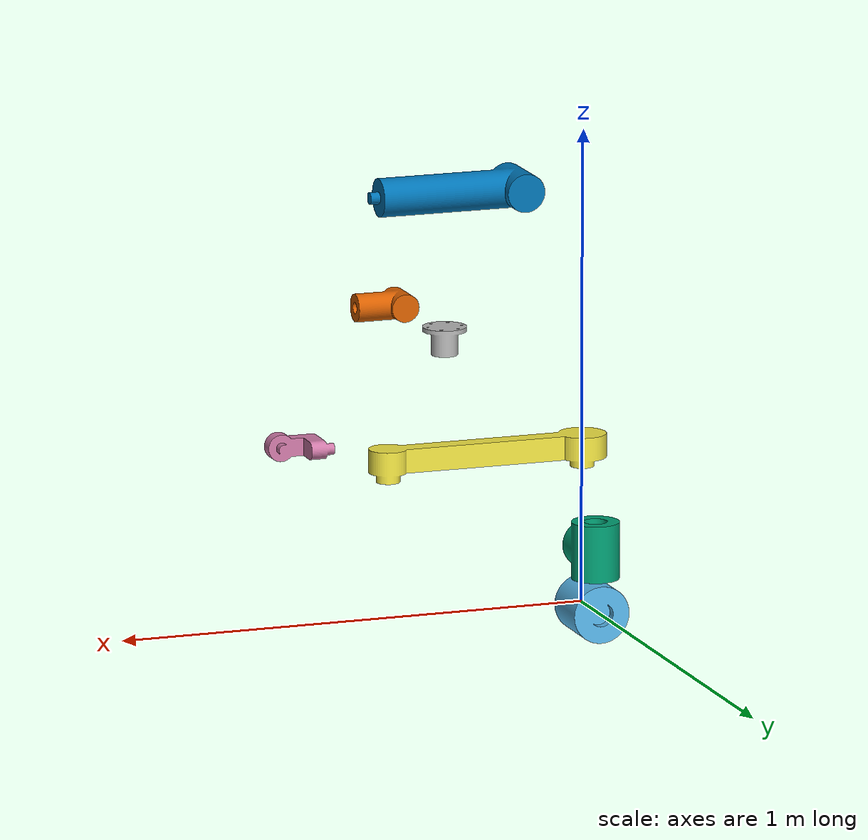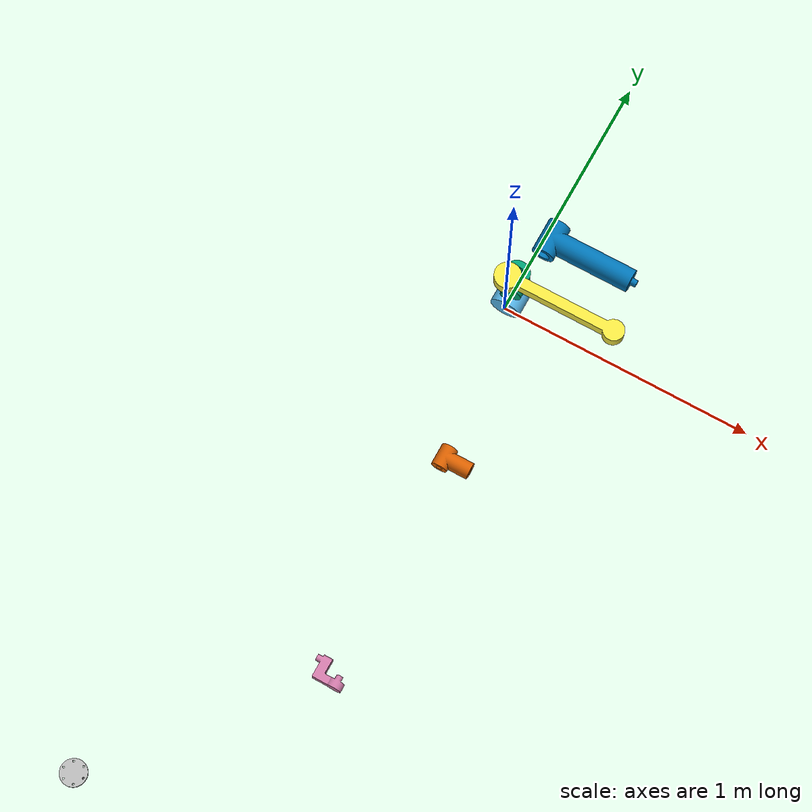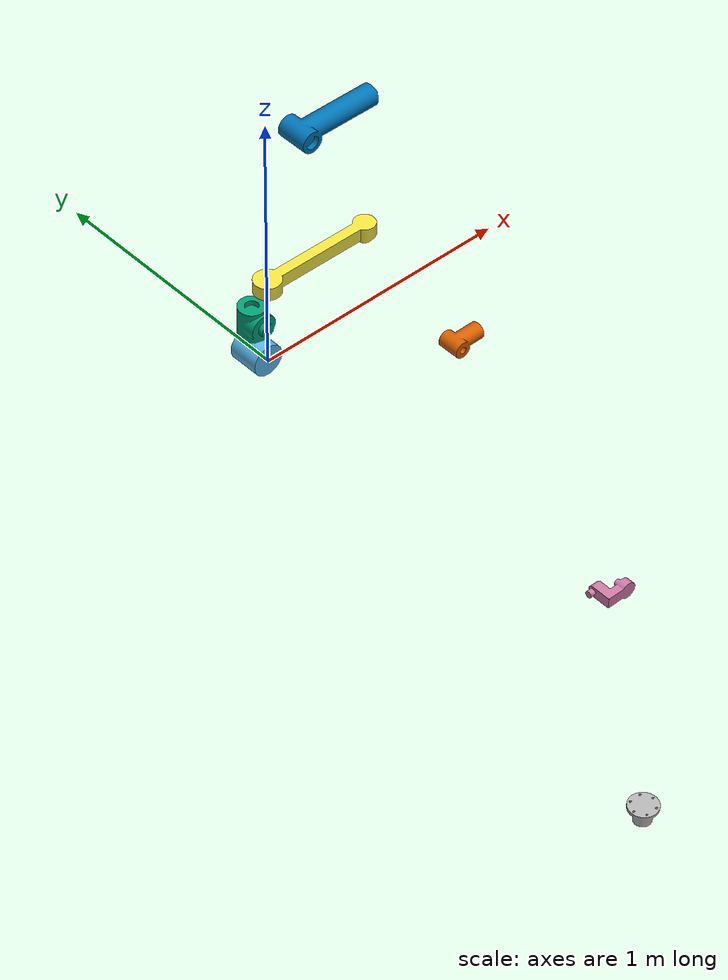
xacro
<?xml version="1.0" ?>
<robot xmlns:xacro="http://wiki.ros.org/xacro" name="Kera_bot">

  <xacro:property name="effort" value="5.0"/>
  <xacro:property name="velocity" value="2.792527"/>

  <link name="world"/>

    <link name="Base-Joint-1">
        <inertial>
            <origin xyz="5.0384031204218303e-17 0.05851013110846246 5.010148893023872e-17" rpy="0.0 0.0 0.0" />
            <mass value="10.345500227720205" />
            <inertia ixx="0.02152083634063567" iyy="0.019080450218857403" izz="0.02152083634063513" ixy="-1.6111964015943992e-16" iyz="-1.5287691624653078e-16" ixz="-2.220446049250313e-16" />
        </inertial>
        <visual name="Base-Joint-1_visual">
            <origin xyz="0.0 0.0 0.0" rpy="0.0 0.0 0.0" />
            <geometry>
                <mesh filename="file://$(find mycobot_description)/meshes/mycobot_280/Base-Joint-1.stl" scale="0.001 0.001 0.001" />
            </geometry>
        </visual>
        <collision name="Base-Joint-1_collision">
            <origin xyz="0.0 0.0 0.0" rpy="0.0 0.0 0.0" />
            <geometry>
                <mesh filename="file://$(find mycobot_description)/meshes/mycobot_280/Base-Joint-1.stl" scale="0.001 0.001 0.001" />
            </geometry>
        </collision>
    </link>
    <link name="Joint-2">
        <inertial>
            <origin xyz="0.0 0.07118557997385196 -0.0018174061909582901" rpy="0.0 0.0 0.0" />
            <mass value="8.481009382139273" />
            <inertia ixx="0.01681727894443069" iyy="0.014312633378827266" izz="0.01376007395993506" ixy="5.551115123125783e-17" iyz="0.0001358605250115167" ixz="-3.469446951953614e-18" />
        </inertial>
        <visual name="Joint-2_visual">
            <origin xyz="0.0 0.0 0.0" rpy="0.0 0.0 0.0" />
            <geometry>
                <mesh filename="file://$(find mycobot_description)/meshes/mycobot_280/Joint-2.stl" scale="0.001 0.001 0.001" />
            </geometry>
        </visual>
        <collision name="Joint-2_collision">
            <origin xyz="0.0 0.0 0.0" rpy="0.0 0.0 0.0" />
            <geometry>
                <mesh filename="file://$(find mycobot_description)/meshes/mycobot_280/Joint-2.stl" scale="0.001 0.001 0.001" />
            </geometry>
        </collision>
    </link>
    <link name="Shoulder-Link">
        <inertial>
            <origin xyz="0.19352979990039623 -1.753886229136695e-17 0.023034780854865957" rpy="0.0 0.0 0.0" />
            <mass value="10.98036043093456" />
            <inertia ixx="0.006417750033621209" iyy="0.30860623392268705" izz="0.3092389191033158" ixy="-3.506989978445303e-17" iyz="-9.234108403291408e-18" ixz="0.0004093544297322068" />
        </inertial>
        <visual name="Shoulder-Link_visual">
            <origin xyz="0.0 0.0 0.0" rpy="0.0 0.0 0.0" />
            <geometry>
                <mesh filename="file://$(find mycobot_description)/meshes/mycobot_280/Shoulder-Link.stl" scale="0.001 0.001 0.001" />
            </geometry>
        </visual>
        <collision name="Shoulder-Link_collision">
            <origin xyz="0.0 0.0 0.0" rpy="0.0 0.0 0.0" />
            <geometry>
                <mesh filename="file://$(find mycobot_description)/meshes/mycobot_280/Shoulder-Link.stl" scale="0.001 0.001 0.001" />
            </geometry>
        </collision>
    </link>
    <link name="Elbow-Joint-and-Link">
        <inertial>
            <origin xyz="8.326190024101203e-17 0.11837701241500734 -0.0010274533686445084" rpy="0.0 0.0 0.0" />
            <mass value="15.001594648533375" />
            <inertia ixx="0.16264109999518533" iyy="0.015206765903014535" izz="0.15974461529292128" ixy="1.3877787807814457e-17" iyz="-0.0018245968547323018" ixz="-7.386181414824649e-18" />
        </inertial>
        <visual name="Elbow-Joint-and-Link_visual">
            <origin xyz="0.0 0.0 0.0" rpy="0.0 0.0 0.0" />
            <geometry>
                <mesh filename="file://$(find mycobot_description)/meshes/mycobot_280/Elbow-Joint-and-Link.stl" scale="0.001 0.001 0.001" />
            </geometry>
        </visual>
        <collision name="Elbow-Joint-and-Link_collision">
            <origin xyz="0.0 0.0 0.0" rpy="0.0 0.0 0.0" />
            <geometry>
                <mesh filename="file://$(find mycobot_description)/meshes/mycobot_280/Elbow-Joint-and-Link.stl" scale="0.001 0.001 0.001" />
            </geometry>
        </collision>
    </link>
    <link name="Joint-4">
        <inertial>
            <origin xyz="1.383333493341685e-17 0.029473388866815973 -0.0007057803847417577" rpy="0.0 0.0 0.0" />
            <mass value="3.275828988003383" />
            <inertia ixx="0.005421023673768468" iyy="0.0020253324025299867" izz="0.004978001041959446" ixy="3.5128150388530344e-17" iyz="-6.814294202175148e-05" ixz="-2.5829630075539664e-19" />
        </inertial>
        <visual name="Joint-4_visual">
            <origin xyz="0.0 0.0 0.0" rpy="0.0 0.0 0.0" />
            <geometry>
                <mesh filename="file://$(find mycobot_description)/meshes/mycobot_280/Joint-4.stl" scale="0.001 0.001 0.001" />
            </geometry>
        </visual>
        <collision name="Joint-4_collision">
            <origin xyz="0.0 0.0 0.0" rpy="0.0 0.0 0.0" />
            <geometry>
                <mesh filename="file://$(find mycobot_description)/meshes/mycobot_280/Joint-4.stl" scale="0.001 0.001 0.001" />
            </geometry>
        </collision>
    </link>
    <link name="Joint-5-6">
        <inertial>
            <origin xyz="0.040075044185615534 -1.7487803913315608e-17 -0.001478642351945427" rpy="0.0 0.0 0.0" />
            <mass value="1.9729408903323196" />
            <inertia ixx="0.0014457136996846522" iyy="0.0035348261165202913" izz="0.0027017305298768224" ixy="2.461115805533892e-19" iyz="1.8723645413468268e-18" ixz="0.0008781366014449223" />
        </inertial>
        <visual name="Joint-5-6_visual">
            <origin xyz="0.0 0.0 0.0" rpy="0.0 0.0 0.0" />
            <geometry>
                <mesh filename="file://$(find mycobot_description)/meshes/mycobot_280/Joint-5-6.stl" scale="0.001 0.001 0.001" />
            </geometry>
        </visual>
        <collision name="Joint-5-6_collision">
            <origin xyz="0.0 0.0 0.0" rpy="0.0 0.0 0.0" />
            <geometry>
                <mesh filename="file://$(find mycobot_description)/meshes/mycobot_280/Joint-5-6.stl" scale="0.001 0.001 0.001" />
            </geometry>
        </collision>
    </link>
    <link name="End-Effector-Rotation-Link">
        <inertial>
            <origin xyz="5.76286354035921e-15 3.582207214302849e-17 0.039372292835333444" rpy="0.0 0.0 0.0" />
            <mass value="1.7365396866148217" />
            <inertia ixx="0.0013059008214124054" iyy="0.001305900821387982" izz="0.0012759165697515174" ixy="2.439454888092385e-18" iyz="4.739248514146325e-18" ixz="-1.9737734987440045e-16" />
        </inertial>
        <visual name="End-Effector-Rotation-Link_visual">
            <origin xyz="0.0 0.0 0.0" rpy="0.0 0.0 0.0" />
            <geometry>
                <mesh filename="file://$(find mycobot_description)/meshes/mycobot_280/End-Effector-Rotation-Link.stl" scale="0.001 0.001 0.001" />
            </geometry>
        </visual>
        <collision name="End-Effector-Rotation-Link_collision">
            <origin xyz="0.0 0.0 0.0" rpy="0.0 0.0 0.0" />
            <geometry>
                <mesh filename="file://$(find mycobot_description)/meshes/mycobot_280/End-Effector-Rotation-Link.stl" scale="0.001 0.001 0.001" />
            </geometry>
        </collision>
    </link>

<joint name="virtual_joint" type="fixed">
		<parent link="world"/>
		<child link="Base-Joint-1"/>
		<origin xyz= "0 0 0" rpy = "0 0 0"/>
</joint>
<joint name="base_link_to_link1" type="fixed">
		<!-- Specifies the axis around which the joint could rotate if it wasn't fixed. -->
		<axis xyz="0 0 0"/>
		<limit effort = "${effort}" lower = "${-pi}" upper = "${pi}" velocity = "${velocity}"/>
		<!-- The link this joint connects to on one side -->
		<parent link="Base-Joint-1"/>
		<!-- The link this joint connects to on the other side -->
		<child link="Joint-2"/>
		<origin xyz= "0 0 0.130" rpy = "0 0 0"/>
</joint>
<joint name="link1_to_link2" type="revolute">
		<axis xyz="0 0 1"/>
		<limit effort = "${effort}" lower = "-2.879793" upper = "2.879793" velocity = "${velocity}"/>
		<parent link="Joint-2"/>
		<child link="Shoulder-Link"/>
		<origin xyz= "0 0 0.180" rpy = "0 0 0"/>
	</joint>
<joint name="link2_to_link3" type="revolute">
		<axis xyz="0 0 1"/>
		<limit effort = "${effort}" lower = "-2.879793" upper = "2.879793" velocity = "${velocity}"/>
		<parent link="Shoulder-Link"/>
		<child link="Elbow-Joint-and-Link"/>
		<origin xyz= "0.1453 0 0.579" rpy = "0 ${pi/2} ${-pi/2}"/>
	</joint>
<joint name="link3_to_link4" type="revolute">
		<axis xyz=" 0 0 1"/>
		<limit effort = "${effort}" lower = "-2.879793" upper = "2.879793" velocity = "${velocity}"/>
		<parent link="Elbow-Joint-and-Link"/>
		<child link="Joint-4"/>
		<origin xyz= "0.40517 0.0 0.72937" rpy = "0 0 0"/>
	</joint>
<joint name="link4_to_link5" type="revolute">
		<axis xyz=" 0 0 1"/>
		<limit effort = "${effort}" lower = "-2.879793" upper = "2.879793" velocity = "${velocity}"/>
		<parent link="Joint-4"/>
		<child link="Joint-5-6"/>
		<origin xyz= "0.491 0.0 0.77937" rpy = "0 0 ${-pi/2}"/>
	</joint>

	<joint name="link5_to_link6" type="revolute">
		<axis xyz=" 0 0 1"/>
		<limit effort = "${effort}" lower = "-2.879793" upper = "2.879793" velocity = "${velocity}"/>
		<parent link="Joint-5-6"/>
		<child link="End-Effector-Rotation-Link"/>
		<origin xyz= "0.6327 0.0 0.72807" rpy = "${pi/2} ${-pi/2} 0"/>
	</joint>

</robot>
